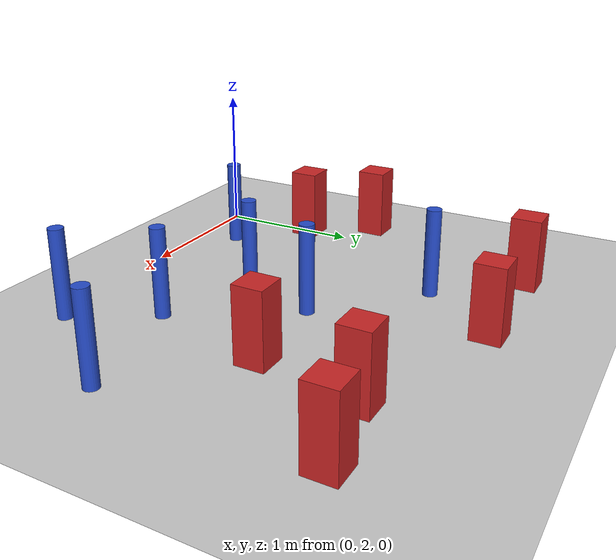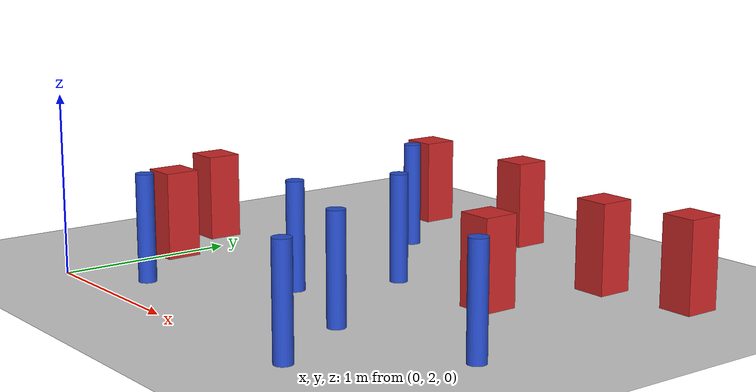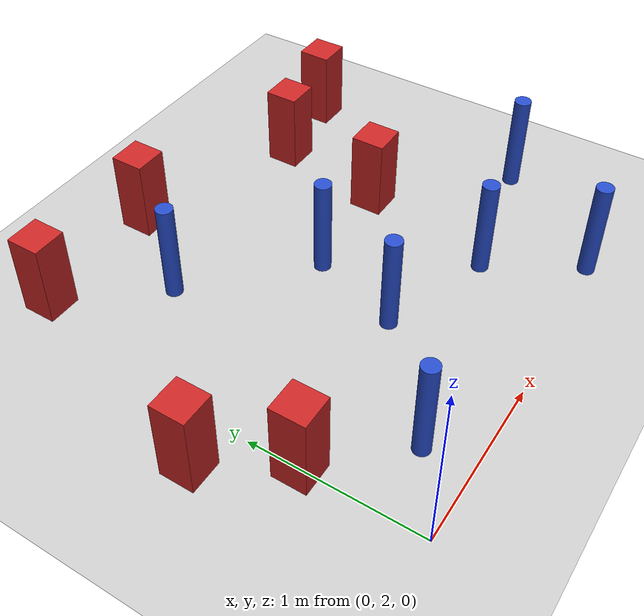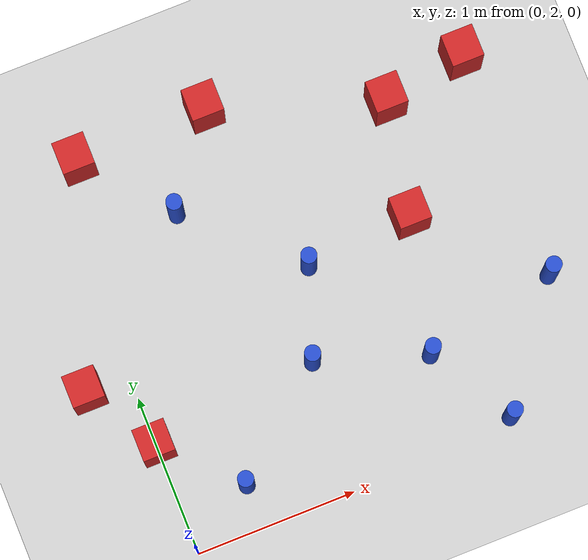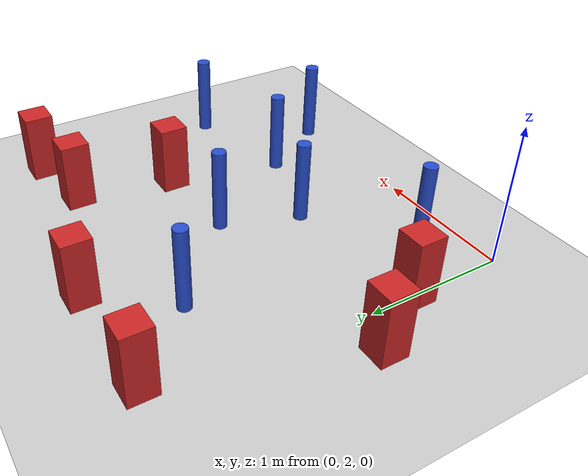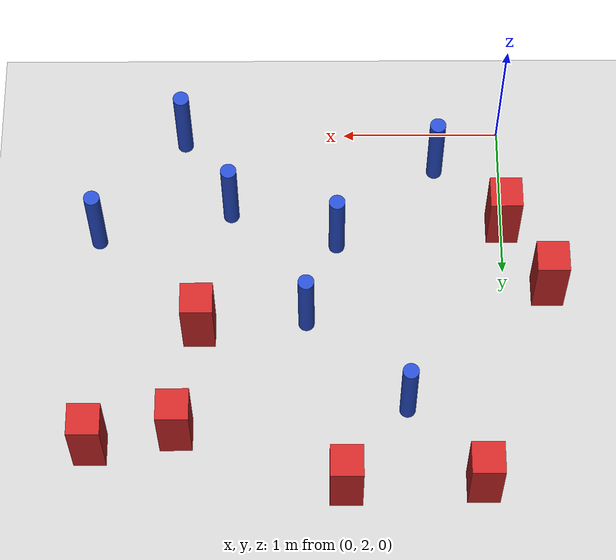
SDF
<sdf version="1.6">
 <world name="default">
  <model name="ground_plane">
   <static>1</static>
   <link name="link">
    <collision name="collision">
     <geometry><plane><normal>0 0 1</normal><size>100 100</size></plane></geometry>
     <surface><friction><ode><mu>100</mu><mu2>50</mu2></ode></friction></surface>
    </collision>
    <visual name="visual">
     <cast_shadows>0</cast_shadows>
     <geometry><plane><normal>0 0 1</normal><size>100 100</size></plane></geometry>
     <material>
      <ambient>1.0 1.0 1.0 1.0</ambient>
      <diffuse>0.8 0.8 0.8 1.0</diffuse>
      <specular>0.01 0.01 0.01 1.000000</specular>
     </material>
    </visual>
   </link>
  </model>
  <model name="pole_obstacle11">
   <static>true</static>
   <pose>0.41692032327 2.27141418955 2.88873142074e-08 -9.90536689663e-09 4.60219948993e-07 -1.20965994959e-07</pose>
   <link name="link">
    <pose>0 0 0.3 0 -0 0</pose>
    <inertial>
     <mass>1</mass>
     <inertia><ixx>0.145833</ixx><ixy>0</ixy><ixz>0</ixz><iyy>0.145833</iyy><iyz>0</iyz><izz>0.125</izz></inertia>
    </inertial>
    <collision name="collision">
     <geometry><cylinder><radius>0.05</radius><length>.6</length></cylinder></geometry>
    </collision>
    <visual name="visual">
     <geometry><cylinder><radius>0.05</radius><length>.6</length></cylinder></geometry>
     <material>
      <script><name>Gazebo/Blue</name><uri>file://media/materials/scripts/gazebo.material</uri></script>
     </material>
    </visual>
   </link>
  </model>
  <model name="square_post_obstacle12">
   <static>true</static>
   <pose>-0.271276717077 3.13880675814 8.22691968438e-08 7.2212513382e-06 -7.54495500217e-07 2.29674213826e-05</pose>
   <link name="link">
    <pose>0 0 0.25 0 -0 0</pose>
    <inertial>
     <mass>100</mass>
     <inertia>
      <ixx>0.166667</ixx>
      <ixy>0</ixy>
      <ixz>0</ixz>
      <iyy>0.166667</iyy>
      <iyz>0</iyz>
      <izz>0.166667</izz>
     </inertia>
    </inertial>
    <collision name="collision"><geometry><box><size>.2 .2 .5</size></box></geometry></collision>
    <visual name="visual">
     <geometry><box><size>.2 .2 .5</size></box></geometry>
     <material>
      <script><name>Gazebo/Red</name><uri>file://media/materials/scripts/gazebo.material</uri></script>
     </material>
    </visual>
   </link>
  </model>
  <model name="square_post_obstacle29">
   <static>true</static>
   <pose>2.04416554064 4.11146892054 8.22691968438e-08 7.22125133819e-06 -7.54495500217e-07 2.29674213826e-05</pose>
   <link name="link">
    <pose>0 0 0.25 0 -0 0</pose>
    <inertial>
     <mass>100</mass>
     <inertia>
      <ixx>0.166667</ixx>
      <ixy>0</ixy>
      <ixz>0</ixz>
      <iyy>0.166667</iyy>
      <iyz>0</iyz>
      <izz>0.166667</izz>
     </inertia>
    </inertial>
    <collision name="collision"><geometry><box><size>.2 .2 .5</size></box></geometry></collision>
    <visual name="visual">
     <geometry><box><size>.2 .2 .5</size></box></geometry>
     <material>
      <script><name>Gazebo/Red</name><uri>file://media/materials/scripts/gazebo.material</uri></script>
     </material>
    </visual>
   </link>
  </model>
  <model name="pole_obstacle76">
   <static>true</static>
   <pose>1.24704807675 3.35923513077 2.88873142074e-08 -9.90536689791e-09 4.6021994899e-07 -1.20965994959e-07</pose>
   <link name="link">
    <pose>0 0 0.3 0 -0 0</pose>
    <inertial>
     <mass>1</mass>
     <inertia><ixx>0.145833</ixx><ixy>0</ixy><ixz>0</ixz><iyy>0.145833</iyy><iyz>0</iyz><izz>0.125</izz></inertia>
    </inertial>
    <collision name="collision">
     <geometry><cylinder><radius>0.05</radius><length>.6</length></cylinder></geometry>
    </collision>
    <visual name="visual">
     <geometry><cylinder><radius>0.05</radius><length>.6</length></cylinder></geometry>
     <material>
      <script><name>Gazebo/Blue</name><uri>file://media/materials/scripts/gazebo.material</uri></script>
     </material>
    </visual>
   </link>
  </model>
  <model name="pole_obstacle115">
   <static>true</static>
   <pose>2.56790089869 2.77761145715 2.88873142074e-08 -9.90536690232e-09 4.6021994898e-07 -1.20965994968e-07</pose>
   <link name="link">
    <pose>0 0 0.3 0 -0 0</pose>
    <inertial>
     <mass>1</mass>
     <inertia><ixx>0.145833</ixx><ixy>0</ixy><ixz>0</ixz><iyy>0.145833</iyy><iyz>0</iyz><izz>0.125</izz></inertia>
    </inertial>
    <collision name="collision">
     <geometry><cylinder><radius>0.05</radius><length>.6</length></cylinder></geometry>
    </collision>
    <visual name="visual">
     <geometry><cylinder><radius>0.05</radius><length>.6</length></cylinder></geometry>
     <material>
      <script><name>Gazebo/Blue</name><uri>file://media/materials/scripts/gazebo.material</uri></script>
     </material>
    </visual>
   </link>
  </model>
  <model name="pole_obstacle118">
   <static>true</static>
   <pose>1.05395910849 2.81342862565 2.88873142074e-08 -9.90536689791e-09 4.6021994899e-07 -1.20965994959e-07</pose>
   <link name="link">
    <pose>0 0 0.3 0 -0 0</pose>
    <inertial>
     <mass>1</mass>
     <inertia><ixx>0.145833</ixx><ixy>0</ixy><ixz>0</ixz><iyy>0.145833</iyy><iyz>0</iyz><izz>0.125</izz></inertia>
    </inertial>
    <collision name="collision">
     <geometry><cylinder><radius>0.05</radius><length>.6</length></cylinder></geometry>
    </collision>
    <visual name="visual">
     <geometry><cylinder><radius>0.05</radius><length>.6</length></cylinder></geometry>
     <material>
      <script><name>Gazebo/Blue</name><uri>file://media/materials/scripts/gazebo.material</uri></script>
     </material>
    </visual>
   </link>
  </model>
  <model name="square_post_obstacle132">
   <static>true</static>
   <pose>1.00806727909 4.47018556694 8.22691968438e-08 7.2212513382e-06 -7.54495500217e-07 2.29674213826e-05</pose>
   <link name="link">
    <pose>0 0 0.25 0 -0 0</pose>
    <inertial>
     <mass>100</mass>
     <inertia>
      <ixx>0.166667</ixx>
      <ixy>0</ixy>
      <ixz>0</ixz>
      <iyy>0.166667</iyy>
      <iyz>0</iyz>
      <izz>0.166667</izz>
     </inertia>
    </inertial>
    <collision name="collision"><geometry><box><size>.2 .2 .5</size></box></geometry></collision>
    <visual name="visual">
     <geometry><box><size>.2 .2 .5</size></box></geometry>
     <material>
      <script><name>Gazebo/Red</name><uri>file://media/materials/scripts/gazebo.material</uri></script>
     </material>
    </visual>
   </link>
  </model>
  <model name="pole_obstacle156">
   <static>true</static>
   <pose>1.72802119756 2.5918614242 2.88873142074e-08 -9.90536689791e-09 4.6021994899e-07 -1.20965994959e-07</pose>
   <link name="link">
    <pose>0 0 0.3 0 -0 0</pose>
    <inertial>
     <mass>1</mass>
     <inertia><ixx>0.145833</ixx><ixy>0</ixy><ixz>0</ixz><iyy>0.145833</iyy><iyz>0</iyz><izz>0.125</izz></inertia>
    </inertial>
    <collision name="collision">
     <geometry><cylinder><radius>0.05</radius><length>.6</length></cylinder></geometry>
    </collision>
    <visual name="visual">
     <geometry><cylinder><radius>0.05</radius><length>.6</length></cylinder></geometry>
     <material>
      <script><name>Gazebo/Blue</name><uri>file://media/materials/scripts/gazebo.material</uri></script>
     </material>
    </visual>
   </link>
  </model>
  <model name="square_post_obstacle156">
   <static>true</static>
   <pose>1.91541433146 3.4142076947 8.22691968438e-08 7.2212513382e-06 -7.54495500217e-07 2.29674213826e-05</pose>
   <link name="link">
    <pose>0 0 0.25 0 -0 0</pose>
    <inertial>
     <mass>100</mass>
     <inertia>
      <ixx>0.166667</ixx>
      <ixy>0</ixy>
      <ixz>0</ixz>
      <iyy>0.166667</iyy>
      <iyz>0</iyz>
      <izz>0.166667</izz>
     </inertia>
    </inertial>
    <collision name="collision"><geometry><box><size>.2 .2 .5</size></box></geometry></collision>
    <visual name="visual">
     <geometry><box><size>.2 .2 .5</size></box></geometry>
     <material>
      <script><name>Gazebo/Red</name><uri>file://media/materials/scripts/gazebo.material</uri></script>
     </material>
    </visual>
   </link>
  </model>
  <model name="pole_obstacle185">
   <static>true</static>
   <pose>2.03528316937 2.06825603339 2.88873142074e-08 -9.9053669043e-09 4.60219948975e-07 -1.2096599497e-07</pose>
   <link name="link">
    <pose>0 0 0.3 0 -0 0</pose>
    <inertial>
     <mass>1</mass>
     <inertia><ixx>0.145833</ixx><ixy>0</ixy><ixz>0</ixz><iyy>0.145833</iyy><iyz>0</iyz><izz>0.125</izz></inertia>
    </inertial>
    <collision name="collision">
     <geometry><cylinder><radius>0.05</radius><length>.6</length></cylinder></geometry>
    </collision>
    <visual name="visual">
     <geometry><cylinder><radius>0.05</radius><length>.6</length></cylinder></geometry>
     <material>
      <script><name>Gazebo/Blue</name><uri>file://media/materials/scripts/gazebo.material</uri></script>
     </material>
    </visual>
   </link>
  </model>
  <model name="square_post_obstacle191">
   <static>true</static>
   <pose>2.56661349408 4.20419674706 8.22691968438e-08 7.2212513382e-06 -7.54495500217e-07 2.29674213826e-05</pose>
   <link name="link">
    <pose>0 0 0.25 0 -0 0</pose>
    <inertial>
     <mass>100</mass>
     <inertia>
      <ixx>0.166667</ixx>
      <ixy>0</ixy>
      <ixz>0</ixz>
      <iyy>0.166667</iyy>
      <iyz>0</iyz>
      <izz>0.166667</izz>
     </inertia>
    </inertial>
    <collision name="collision"><geometry><box><size>.2 .2 .5</size></box></geometry></collision>
    <visual name="visual">
     <geometry><box><size>.2 .2 .5</size></box></geometry>
     <material>
      <script><name>Gazebo/Red</name><uri>file://media/materials/scripts/gazebo.material</uri></script>
     </material>
    </visual>
   </link>
  </model>
  <model name="pole_obstacle195">
   <static>true</static>
   <pose>0.6249627177 3.94848946035 2.88873142074e-08 -9.90536689636e-09 4.60219948994e-07 -1.20965994958e-07</pose>
   <link name="link">
    <pose>0 0 0.3 0 -0 0</pose>
    <inertial>
     <mass>1</mass>
     <inertia><ixx>0.145833</ixx><ixy>0</ixy><ixz>0</ixz><iyy>0.145833</iyy><iyz>0</iyz><izz>0.125</izz></inertia>
    </inertial>
    <collision name="collision">
     <geometry><cylinder><radius>0.05</radius><length>.6</length></cylinder></geometry>
    </collision>
    <visual name="visual">
     <geometry><cylinder><radius>0.05</radius><length>.6</length></cylinder></geometry>
     <material>
      <script><name>Gazebo/Blue</name><uri>file://media/materials/scripts/gazebo.material</uri></script>
     </material>
    </visual>
   </link>
  </model>
  <model name="square_post_obstacle225">
   <static>true</static>
   <pose>0.178096032622 4.45567996466 8.22691968438e-08 7.2212513382e-06 -7.54495500217e-07 2.29674213826e-05</pose>
   <link name="link">
    <pose>0 0 0.25 0 -0 0</pose>
    <inertial>
     <mass>100</mass>
     <inertia>
      <ixx>0.166667</ixx>
      <ixy>0</ixy>
      <ixz>0</ixz>
      <iyy>0.166667</iyy>
      <iyz>0</iyz>
      <izz>0.166667</izz>
     </inertia>
    </inertial>
    <collision name="collision"><geometry><box><size>.2 .2 .5</size></box></geometry></collision>
    <visual name="visual">
     <geometry><box><size>.2 .2 .5</size></box></geometry>
     <material>
      <script><name>Gazebo/Red</name><uri>file://media/materials/scripts/gazebo.material</uri></script>
     </material>
    </visual>
   </link>
  </model>
  <model name="square_post_obstacle226">
   <static>true</static>
   <pose>-0.00183896737838 2.69194996466 8.22691968438e-08 7.2212513382e-06 -7.54495500217e-07 2.29674213826e-05</pose>
   <link name="link">
    <pose>0 0 0.25 0 -0 0</pose>
    <inertial>
     <mass>100</mass>
     <inertia>
      <ixx>0.166667</ixx>
      <ixy>0</ixy>
      <ixz>0</ixz>
      <iyy>0.166667</iyy>
      <iyz>0</iyz>
      <izz>0.166667</izz>
     </inertia>
    </inertial>
    <collision name="collision"><geometry><box><size>.2 .2 .5</size></box></geometry></collision>
    <visual name="visual">
     <geometry><box><size>.2 .2 .5</size></box></geometry>
     <material>
      <script><name>Gazebo/Red</name><uri>file://media/materials/scripts/gazebo.material</uri></script>
     </material>
    </visual>
   </link>
  </model>
 </world>
</sdf>
